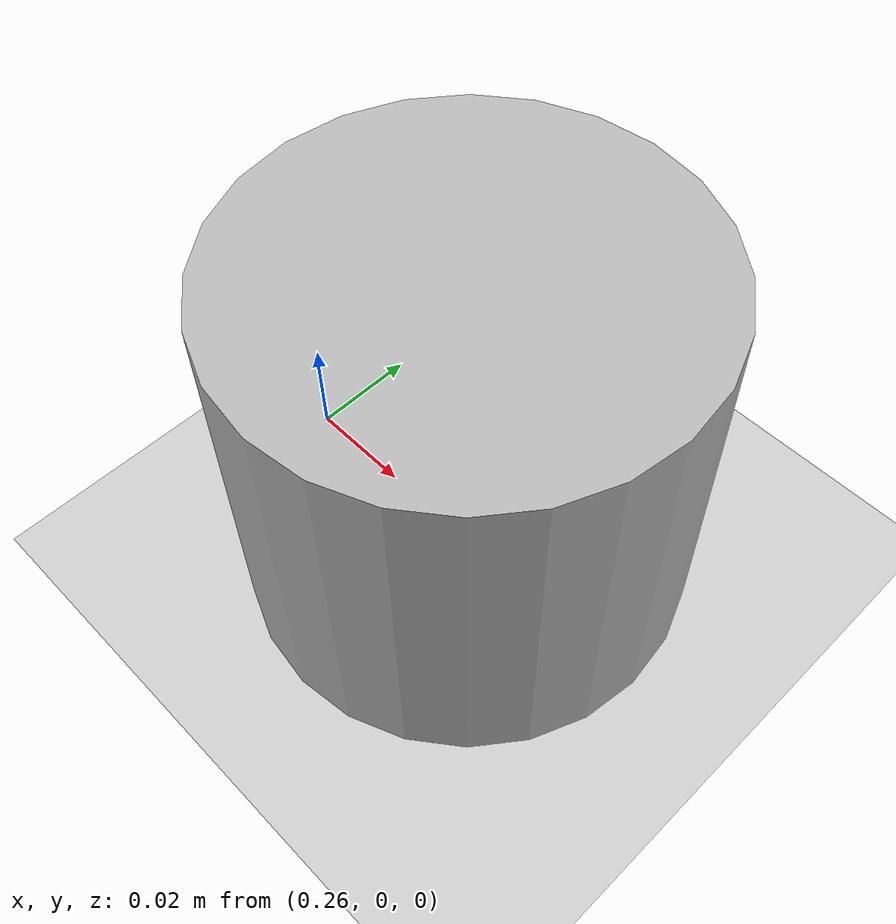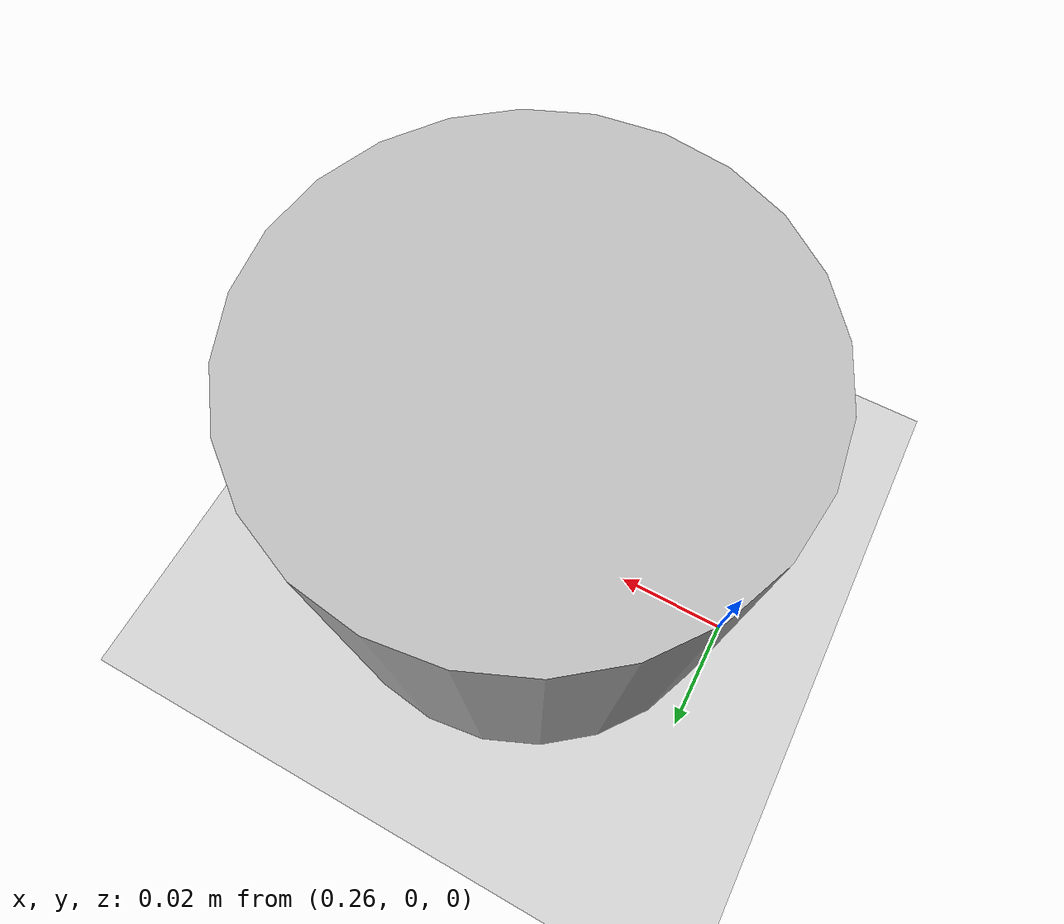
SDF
<?xml version="1.0" ?>
<sdf version="1.4">
  <!-- We use a custom world for the iiwa so that the camera angle is launched correctly. -->
  <!-- One can change this world to his needs or use another one. -->

  <world name="default">

    <include>
      <uri>model://ground_plane</uri>
    </include>

    <!-- Global light source -->
    <include>
      <uri>model://sun</uri>
    </include>

    <model name="cylinder">
    <pose>0.3 0 0.035 0 0 0</pose>
    <static>true</static>
    <link name="tumor">
      <visual name="visual">
        <geometry>
          <cylinder>
            <radius>0.04</radius>
            <length>0.07</length>
          </cylinder>
        </geometry>
      </visual>
    </link>
  </model>

    <!-- Focus camera -->
    <gui fullscreen='0'>
      <camera name='user_camera'>
        <pose>4.927360 -4.376610 3.740080 0.000000 0.275643 2.356190</pose>
        <view_controller>orbit</view_controller>
      </camera>
    </gui>

  </world>

</sdf>
